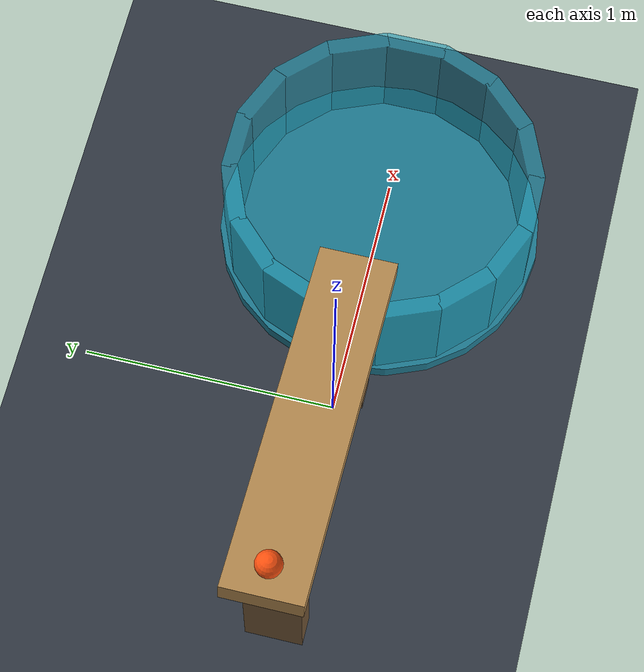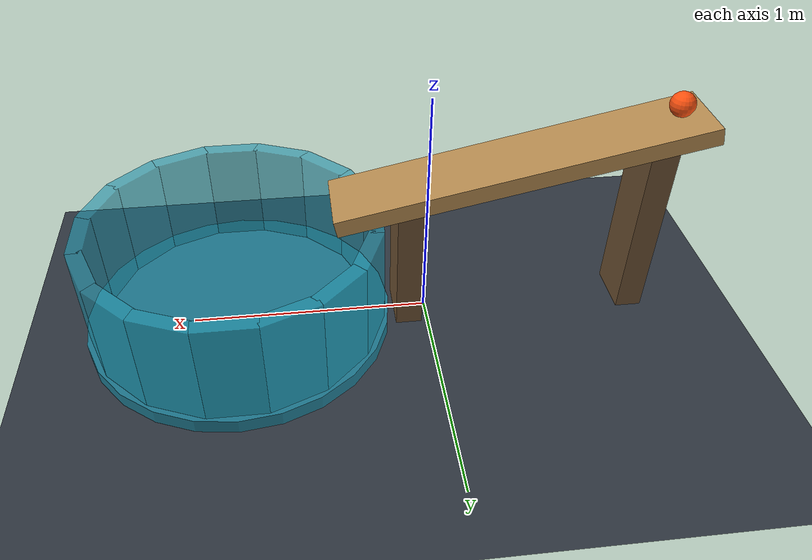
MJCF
<mujoco model="ball_ramp_cup">
  <compiler angle="degree"/>
  <option timestep="0.002" gravity="0 0 -9.81" integrator="implicitfast" cone="elliptic" iterations="80"/>

  <visual>
    <headlight ambient="0.35 0.35 0.35" diffuse="0.65 0.65 0.65"/>
    <rgba haze="0.15 0.18 0.22 1"/>
  </visual>

  <worldbody>
    <light name="key_light" pos="-1 -2 3" dir="0.3 0.3 -1" directional="true"/>
    <camera name="overview" pos="0 -3.5 2.2" xyaxes="1 0 0 0 0.45 0.893" fovy="45"/>

    <geom name="floor" type="plane" pos="0 0 0" size="3 3 0.1" friction="0.8 0.008 0.01" condim="6" rgba="0.19 0.22 0.26 1"/>

    <body name="ramp">
      <geom name="ramp_surface" type="box" pos="-0.35 0 0.70" euler="0 12 0" size="0.75 0.15 0.035" friction="0.8 0.004 0.0003" condim="6" solref="0.01 1" solimp="0.95 0.99 0.001" rgba="0.72 0.55 0.32 1"/>
      <geom name="ramp_support_high" type="box" pos="-0.9 0 0.3975" size="0.055 0.11 0.3975" rgba="0.43 0.32 0.20 1"/>
      <geom name="ramp_support_low" type="box" pos="0.08 0 0.2935" size="0.055 0.11 0.2935" rgba="0.43 0.32 0.20 1"/>
    </body>

    <body name="cup" pos="0.8 0 0">
      <geom name="cup_bottom" type="cylinder" pos="0 0 0.03" size="0.64 0.03" friction="0.9 0.008 0.01" condim="6" solref="0.01 1" solimp="0.95 0.99 0.001" rgba="0.12 0.48 0.57 1"/>
      <geom name="cup_wall_00" type="box" pos="0.58 0 0.28" euler="0 0 0" size="0.032 0.12 0.22" friction="0.8 0.008 0.01" condim="6" solref="0.01 1" rgba="0.15 0.62 0.72 0.65"/>
      <geom name="cup_wall_01" type="box" pos="0.535850 0.221956 0.28" euler="0 0 22.5" size="0.032 0.12 0.22" friction="0.8 0.008 0.01" condim="6" solref="0.01 1" rgba="0.15 0.62 0.72 0.65"/>
      <geom name="cup_wall_02" type="box" pos="0.410122 0.410122 0.28" euler="0 0 45" size="0.032 0.12 0.22" friction="0.8 0.008 0.01" condim="6" solref="0.01 1" rgba="0.15 0.62 0.72 0.65"/>
      <geom name="cup_wall_03" type="box" pos="0.221956 0.535850 0.28" euler="0 0 67.5" size="0.032 0.12 0.22" friction="0.8 0.008 0.01" condim="6" solref="0.01 1" rgba="0.15 0.62 0.72 0.65"/>
      <geom name="cup_wall_04" type="box" pos="0 0.58 0.28" euler="0 0 90" size="0.032 0.12 0.22" friction="0.8 0.008 0.01" condim="6" solref="0.01 1" rgba="0.15 0.62 0.72 0.65"/>
      <geom name="cup_wall_05" type="box" pos="-0.221956 0.535850 0.28" euler="0 0 112.5" size="0.032 0.12 0.22" friction="0.8 0.008 0.01" condim="6" solref="0.01 1" rgba="0.15 0.62 0.72 0.65"/>
      <geom name="cup_wall_06" type="box" pos="-0.410122 0.410122 0.28" euler="0 0 135" size="0.032 0.12 0.22" friction="0.8 0.008 0.01" condim="6" solref="0.01 1" rgba="0.15 0.62 0.72 0.65"/>
      <geom name="cup_wall_07" type="box" pos="-0.535850 0.221956 0.28" euler="0 0 157.5" size="0.032 0.12 0.22" friction="0.8 0.008 0.01" condim="6" solref="0.01 1" rgba="0.15 0.62 0.72 0.65"/>
      <geom name="cup_wall_08" type="box" pos="-0.58 0 0.28" euler="0 0 180" size="0.032 0.12 0.22" friction="0.8 0.008 0.01" condim="6" solref="0.01 1" rgba="0.15 0.62 0.72 0.65"/>
      <geom name="cup_wall_09" type="box" pos="-0.535850 -0.221956 0.28" euler="0 0 202.5" size="0.032 0.12 0.22" friction="0.8 0.008 0.01" condim="6" solref="0.01 1" rgba="0.15 0.62 0.72 0.65"/>
      <geom name="cup_wall_10" type="box" pos="-0.410122 -0.410122 0.28" euler="0 0 225" size="0.032 0.12 0.22" friction="0.8 0.008 0.01" condim="6" solref="0.01 1" rgba="0.15 0.62 0.72 0.65"/>
      <geom name="cup_wall_11" type="box" pos="-0.221956 -0.535850 0.28" euler="0 0 247.5" size="0.032 0.12 0.22" friction="0.8 0.008 0.01" condim="6" solref="0.01 1" rgba="0.15 0.62 0.72 0.65"/>
      <geom name="cup_wall_12" type="box" pos="0 -0.58 0.28" euler="0 0 270" size="0.032 0.12 0.22" friction="0.8 0.008 0.01" condim="6" solref="0.01 1" rgba="0.15 0.62 0.72 0.65"/>
      <geom name="cup_wall_13" type="box" pos="0.221956 -0.535850 0.28" euler="0 0 292.5" size="0.032 0.12 0.22" friction="0.8 0.008 0.01" condim="6" solref="0.01 1" rgba="0.15 0.62 0.72 0.65"/>
      <geom name="cup_wall_14" type="box" pos="0.410122 -0.410122 0.28" euler="0 0 315" size="0.032 0.12 0.22" friction="0.8 0.008 0.01" condim="6" solref="0.01 1" rgba="0.15 0.62 0.72 0.65"/>
      <geom name="cup_wall_15" type="box" pos="0.535850 -0.221956 0.28" euler="0 0 337.5" size="0.032 0.12 0.22" friction="0.8 0.008 0.01" condim="6" solref="0.01 1" rgba="0.15 0.62 0.72 0.65"/>
    </body>

    <body name="ball" pos="-0.96808 0 0.91850">
      <freejoint name="ball_free"/>
      <geom name="ball" type="sphere" size="0.05" density="1000" friction="0.6 0.004 0.001" condim="6" solref="0.01 1" solimp="0.95 0.99 0.001" rgba="1 0.32 0.06 1"/>
    </body>
  </worldbody>

  <keyframe>
    <key name="start" qpos="-0.96808 0 0.91850 1 0 0 0" qvel="0 0 0 0 0 0"/>
  </keyframe>
</mujoco>
